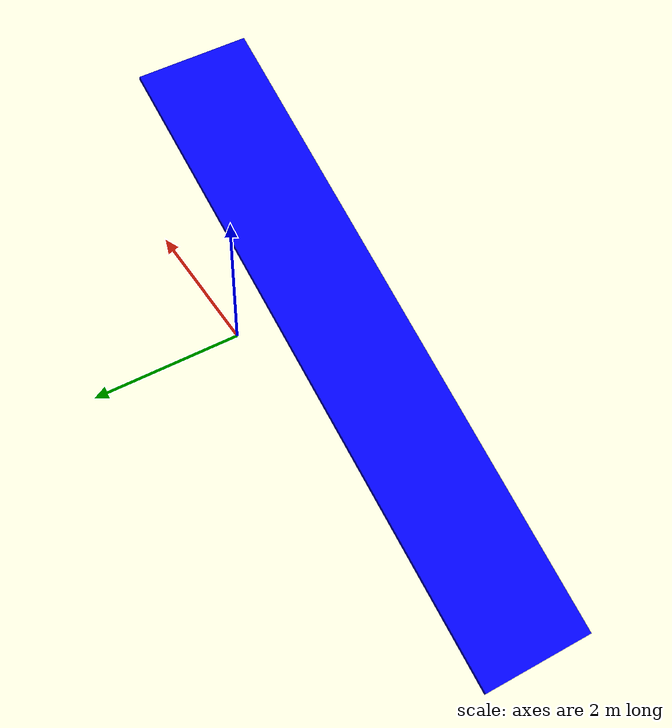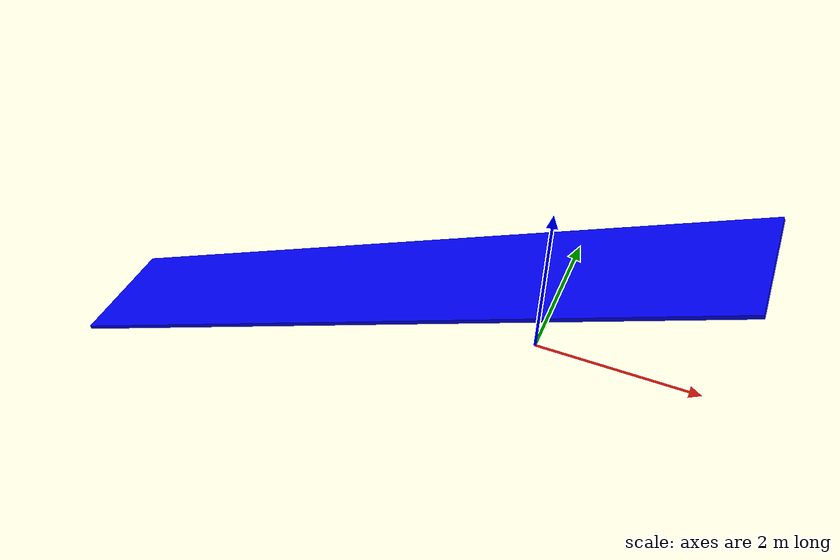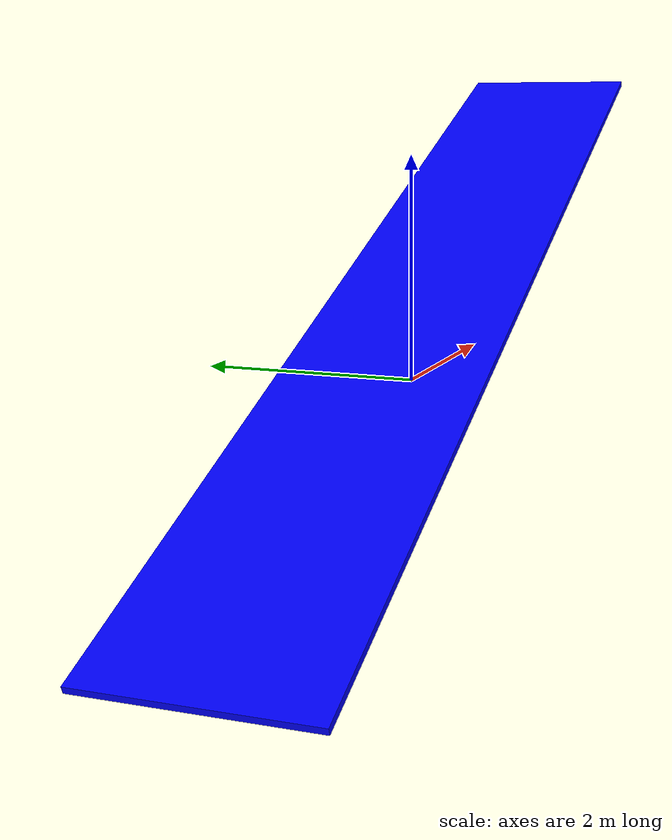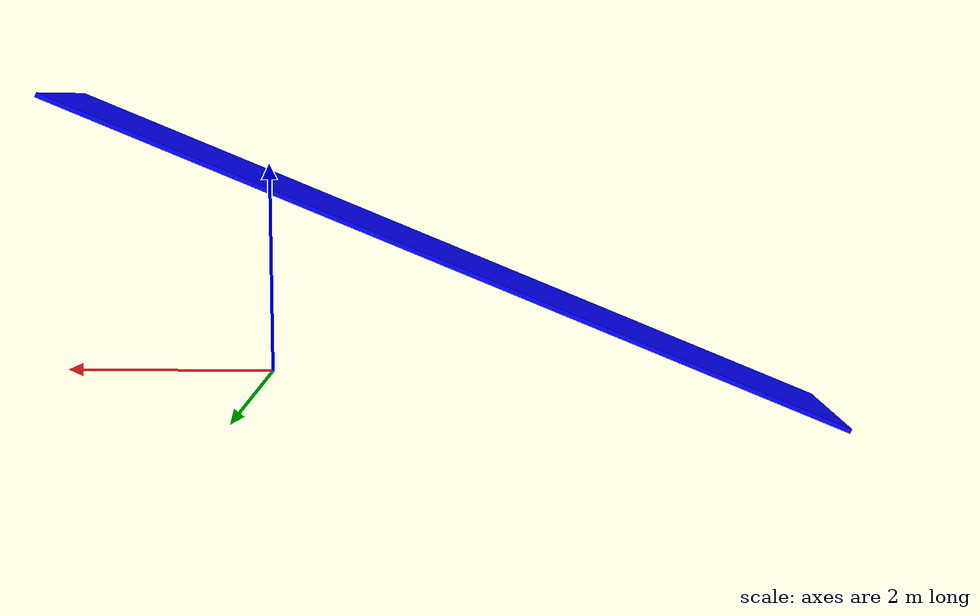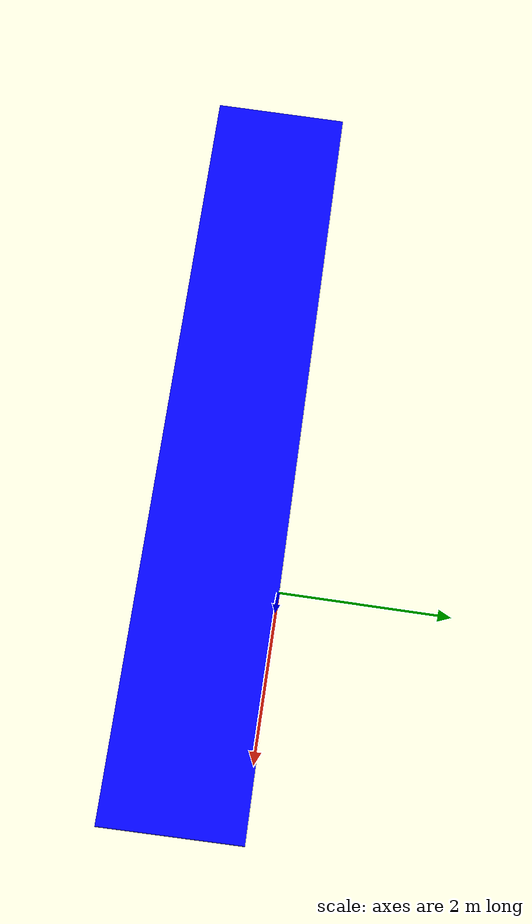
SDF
<?xml version='1.0'?>
<sdf version='1.6'>
  <model name='ramp'>
    <link name='link'>
      <pose frame=''>-1.6738 -0.738858 1.05171 0.000999 0.391218 -3.13169</pose>
      <inertial>
        <mass>1.52594</mass>
        <inertia>
          <ixx>0.104223</ixx>
          <ixy>0</ixy>
          <ixz>0</ixz>
          <iyy>3.42934</iyy>
          <iyz>0</iyz>
          <izz>3.53335</izz>
        </inertia>
        <pose frame=''>0 0 0 0 -0 0</pose>
      </inertial>
      <self_collide>0</self_collide>
      <kinematic>0</kinematic>
      <gravity>0</gravity>
      <visual name='visual'>
        <geometry>
          <box>
            <size>8.42274 1.46761 0.046883</size>
          </box>
        </geometry>
        <material>
          <script>
            <name>Gazebo/Grey</name>
            <uri>file://media/materials/scripts/gazebo.material</uri>
          </script>
          <ambient>0 0 1 1</ambient>
          <diffuse>0.7 0.7 0.7 1</diffuse>
          <specular>0.01 0.01 0.01 1</specular>
          <emissive>0 0 0 1</emissive>
          <shader type='vertex'>
            <normal_map>__default__</normal_map>
          </shader>
        </material>
        <pose frame=''>0 0 0 0 -0 0</pose>
        <cast_shadows>1</cast_shadows>
        <transparency>0</transparency>
      </visual>
      <collision name='collision'>
        <laser_retro>0</laser_retro>
        <max_contacts>10</max_contacts>
        <pose frame=''>0 0 0 0 -0 0</pose>
        <geometry>
          <box>
            <size>8.42274 1.46761 0.046883</size>
          </box>
        </geometry>
        <surface>
          <friction>
            <ode>
              <mu>1</mu>
              <mu2>1</mu2>
              <fdir1>0 0 0</fdir1>
              <slip1>0</slip1>
              <slip2>0</slip2>
            </ode>
            <torsional>
              <coefficient>1</coefficient>
              <patch_radius>0</patch_radius>
              <surface_radius>0</surface_radius>
              <use_patch_radius>1</use_patch_radius>
              <ode>
                <slip>0</slip>
              </ode>
            </torsional>
          </friction>
          <bounce>
            <restitution_coefficient>0</restitution_coefficient>
            <threshold>1e+06</threshold>
          </bounce>
          <contact>
            <collide_without_contact>0</collide_without_contact>
            <collide_without_contact_bitmask>1</collide_without_contact_bitmask>
            <collide_bitmask>1</collide_bitmask>
            <ode>
              <soft_cfm>0</soft_cfm>
              <soft_erp>0.2</soft_erp>
              <kp>1e+13</kp>
              <kd>1</kd>
              <max_vel>0.01</max_vel>
              <min_depth>0</min_depth>
            </ode>
            <bullet>
              <split_impulse>1</split_impulse>
              <split_impulse_penetration_threshold>-0.01</split_impulse_penetration_threshold>
              <soft_cfm>0</soft_cfm>
              <soft_erp>0.2</soft_erp>
              <kp>1e+13</kp>
              <kd>1</kd>
            </bullet>
          </contact>
        </surface>
      </collision>
    </link>
    <static>0</static>
    <allow_auto_disable>1</allow_auto_disable>
  </model>
</sdf>
